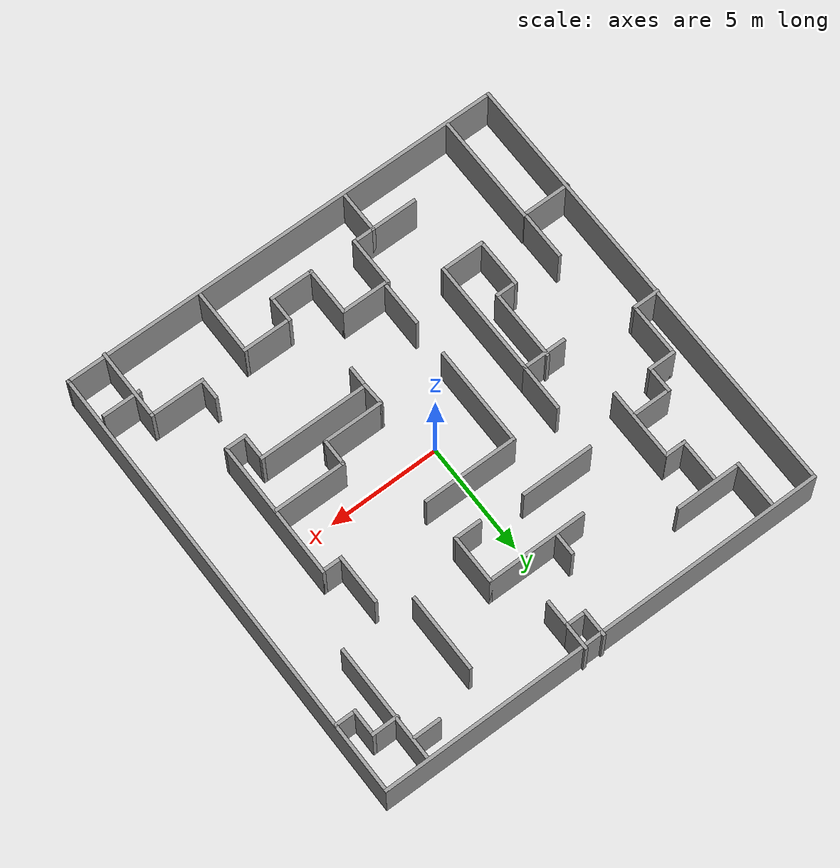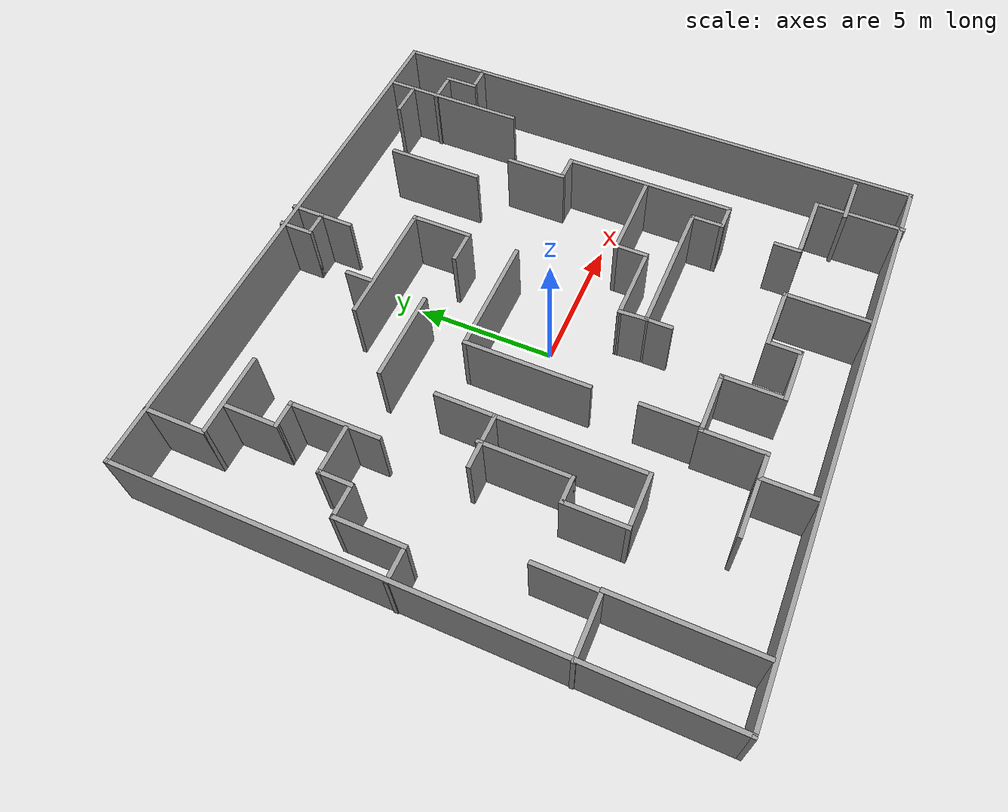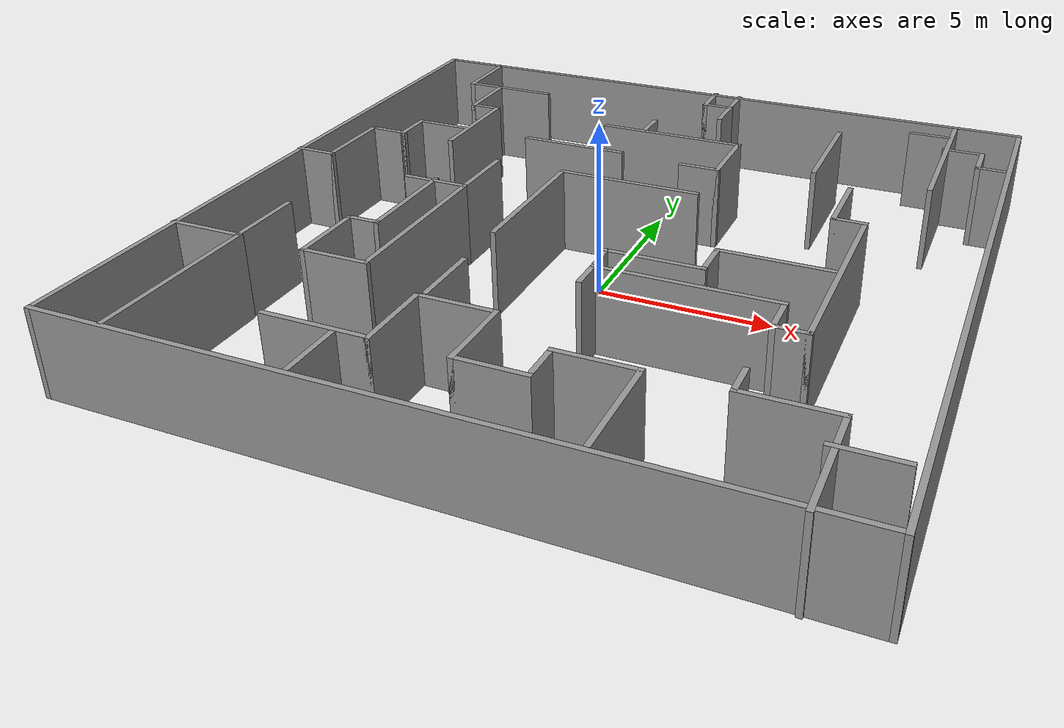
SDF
<?xml version="1.0" ?>
<sdf version="1.6">
  <world name="maze2_world">
    <include>
      <uri>file:///home/nitron/ALSAI/worlds/maze3/model.sdf</uri>
    </include>
  </world>
</sdf>

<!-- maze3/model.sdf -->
<sdf version='1.7'>
  <model name='maze3'>
    <pose>-0.097046 0.137521 0 0 -0 0</pose>
    <link name='Wall_0'>
      <collision name='Wall_0_Collision'>
        <geometry>
          <box>
            <size>20.25 0.15 2.5</size>
          </box>
        </geometry>
        <pose>0 0 1.25 0 -0 0</pose>
      </collision>
      <visual name='Wall_0_Visual'>
        <pose>0 0 1.25 0 -0 0</pose>
        <geometry>
          <box>
            <size>20.25 0.15 2.5</size>
          </box>
        </geometry>
        <material>
          <script>
            <uri>file://media/materials/scripts/gazebo.material</uri>
            <name>Gazebo/Grey</name>
          </script>
          <ambient>1 1 1 1</ambient>
        </material>
        <meta>
          <layer>0</layer>
        </meta>
      </visual>
      <pose>0.016675 10.0351 0 0 -0 0</pose>
    </link>
    <link name='Wall_1'>
      <collision name='Wall_1_Collision'>
        <geometry>
          <box>
            <size>20.25 0.15 2.5</size>
          </box>
        </geometry>
        <pose>0 0 1.25 0 -0 0</pose>
      </collision>
      <visual name='Wall_1_Visual'>
        <pose>0 0 1.25 0 -0 0</pose>
        <geometry>
          <box>
            <size>20.25 0.15 2.5</size>
          </box>
        </geometry>
        <material>
          <script>
            <uri>file://media/materials/scripts/gazebo.material</uri>
            <name>Gazebo/Grey</name>
          </script>
          <ambient>1 1 1 1</ambient>
        </material>
        <meta>
          <layer>0</layer>
        </meta>
      </visual>
      <pose>10.0667 -0.01495 0 0 -0 -1.5708</pose>
    </link>
    <link name='Wall_100'>
      <collision name='Wall_100_Collision'>
        <geometry>
          <box>
            <size>4.5 0.15 2.5</size>
          </box>
        </geometry>
        <pose>0 0 1.25 0 -0 0</pose>
      </collision>
      <visual name='Wall_100_Visual'>
        <pose>0 0 1.25 0 -0 0</pose>
        <geometry>
          <box>
            <size>4.5 0.15 2.5</size>
          </box>
        </geometry>
        <material>
          <script>
            <uri>file://media/materials/scripts/gazebo.material</uri>
            <name>Gazebo/Grey</name>
          </script>
          <ambient>1 1 1 1</ambient>
        </material>
        <meta>
          <layer>0</layer>
        </meta>
      </visual>
      <pose>-1.95923 -0.173249 0 0 -0 -1.5708</pose>
    </link>
    <link name='Wall_11'>
      <collision name='Wall_11_Collision'>
        <geometry>
          <box>
            <size>1 0.15 2.5</size>
          </box>
        </geometry>
        <pose>0 0 1.25 0 -0 0</pose>
      </collision>
      <visual name='Wall_11_Visual'>
        <pose>0 0 1.25 0 -0 0</pose>
        <geometry>
          <box>
            <size>1 0.15 2.5</size>
          </box>
        </geometry>
        <material>
          <script>
            <uri>file://media/materials/scripts/gazebo.material</uri>
            <name>Gazebo/Grey</name>
          </script>
          <ambient>1 1 1 1</ambient>
        </material>
        <meta>
          <layer>0</layer>
        </meta>
      </visual>
      <pose>-6.58427 5.99843 0 0 -0 0</pose>
    </link>
    <link name='Wall_14'>
      <collision name='Wall_14_Collision'>
        <geometry>
          <box>
            <size>3.25 0.15 2.5</size>
          </box>
        </geometry>
        <pose>0 0 1.25 0 -0 0</pose>
      </collision>
      <visual name='Wall_14_Visual'>
        <pose>0 0 1.25 0 -0 0</pose>
        <geometry>
          <box>
            <size>3.25 0.15 2.5</size>
          </box>
        </geometry>
        <material>
          <script>
            <uri>file://media/materials/scripts/gazebo.material</uri>
            <name>Gazebo/Grey</name>
          </script>
          <ambient>1 1 1 1</ambient>
        </material>
        <meta>
          <layer>0</layer>
        </meta>
      </visual>
      <pose>-6.15927 4.44843 0 0 -0 -1.5708</pose>
    </link>
    <link name='Wall_16'>
      <collision name='Wall_16_Collision'>
        <geometry>
          <box>
            <size>1.75 0.15 2.5</size>
          </box>
        </geometry>
        <pose>0 0 1.25 0 -0 0</pose>
      </collision>
      <visual name='Wall_16_Visual'>
        <pose>0 0 1.25 0 -0 0</pose>
        <geometry>
          <box>
            <size>1.75 0.15 2.5</size>
          </box>
        </geometry>
        <material>
          <script>
            <uri>file://media/materials/scripts/gazebo.material</uri>
            <name>Gazebo/Grey</name>
          </script>
          <ambient>1 1 1 1</ambient>
        </material>
        <meta>
          <layer>0</layer>
        </meta>
      </visual>
      <pose>-7.06489 3.98694 0 0 -0 3.14159</pose>
    </link>
    <link name='Wall_17'>
      <collision name='Wall_17_Collision'>
        <geometry>
          <box>
            <size>1.25 0.15 2.5</size>
          </box>
        </geometry>
        <pose>0 0 1.25 0 -0 0</pose>
      </collision>
      <visual name='Wall_17_Visual'>
        <pose>0 0 1.25 0 -0 0</pose>
        <geometry>
          <box>
            <size>1.25 0.15 2.5</size>
          </box>
        </geometry>
        <material>
          <script>
            <uri>file://media/materials/scripts/gazebo.material</uri>
            <name>Gazebo/Grey</name>
          </script>
          <ambient>1 1 1 1</ambient>
        </material>
        <meta>
          <layer>0</layer>
        </meta>
      </visual>
      <pose>-7.86489 3.43694 0 0 -0 -1.5708</pose>
    </link>
    <link name='Wall_18'>
      <collision name='Wall_18_Collision'>
        <geometry>
          <box>
            <size>1.25 0.15 2.5</size>
          </box>
        </geometry>
        <pose>0 0 1.25 0 -0 0</pose>
      </collision>
      <visual name='Wall_18_Visual'>
        <pose>0 0 1.25 0 -0 0</pose>
        <geometry>
          <box>
            <size>1.25 0.15 2.5</size>
          </box>
        </geometry>
        <material>
          <script>
            <uri>file://media/materials/scripts/gazebo.material</uri>
            <name>Gazebo/Grey</name>
          </script>
          <ambient>1 1 1 1</ambient>
        </material>
        <meta>
          <layer>0</layer>
        </meta>
      </visual>
      <pose>-8.41489 2.88694 0 0 -0 3.14159</pose>
    </link>
    <link name='Wall_19'>
      <collision name='Wall_19_Collision'>
        <geometry>
          <box>
            <size>2.5 0.15 2.5</size>
          </box>
        </geometry>
        <pose>0 0 1.25 0 -0 0</pose>
      </collision>
      <visual name='Wall_19_Visual'>
        <pose>0 0 1.25 0 -0 0</pose>
        <geometry>
          <box>
            <size>2.5 0.15 2.5</size>
          </box>
        </geometry>
        <material>
          <script>
            <uri>file://media/materials/scripts/gazebo.material</uri>
            <name>Gazebo/Grey</name>
          </script>
          <ambient>1 1 1 1</ambient>
        </material>
        <meta>
          <layer>0</layer>
        </meta>
      </visual>
      <pose>-8.96489 1.71194 0 0 -0 -1.5708</pose>
    </link>
    <link name='Wall_2'>
      <collision name='Wall_2_Collision'>
        <geometry>
          <box>
            <size>20.25 0.15 2.5</size>
          </box>
        </geometry>
        <pose>0 0 1.25 0 -0 0</pose>
      </collision>
      <visual name='Wall_2_Visual'>
        <pose>0 0 1.25 0 -0 0</pose>
        <geometry>
          <box>
            <size>20.25 0.15 2.5</size>
          </box>
        </geometry>
        <material>
          <script>
            <uri>file://media/materials/scripts/gazebo.material</uri>
            <name>Gazebo/Grey</name>
          </script>
          <ambient>1 1 1 1</ambient>
        </material>
        <meta>
          <layer>0</layer>
        </meta>
      </visual>
      <pose>0.016675 -10.0649 0 0 -0 3.14159</pose>
    </link>
    <link name='Wall_22'>
      <collision name='Wall_22_Collision'>
        <geometry>
          <box>
            <size>1.25 0.15 2.5</size>
          </box>
        </geometry>
        <pose>0 0 1.25 0 -0 0</pose>
      </collision>
      <visual name='Wall_22_Visual'>
        <pose>0 0 1.25 0 -0 0</pose>
        <geometry>
          <box>
            <size>1.25 0.15 2.5</size>
          </box>
        </geometry>
        <material>
          <script>
            <uri>file://media/materials/scripts/gazebo.material</uri>
            <name>Gazebo/Grey</name>
          </script>
          <ambient>1 1 1 1</ambient>
        </material>
        <meta>
          <layer>0</layer>
        </meta>
      </visual>
      <pose>-9.51489 0.536942 0 0 -0 3.14159</pose>
    </link>
    <link name='Wall_24'>
      <collision name='Wall_24_Collision'>
        <geometry>
          <box>
            <size>2.25 0.15 2.5</size>
          </box>
        </geometry>
        <pose>0 0 1.25 0 -0 0</pose>
      </collision>
      <visual name='Wall_24_Visual'>
        <pose>0 0 1.25 0 -0 0</pose>
        <geometry>
          <box>
            <size>2.25 0.15 2.5</size>
          </box>
        </geometry>
        <material>
          <script>
            <uri>file://media/materials/scripts/gazebo.material</uri>
            <name>Gazebo/Grey</name>
          </script>
          <ambient>1 1 1 1</ambient>
        </material>
        <meta>
          <layer>0</layer>
        </meta>
      </visual>
      <pose>-9.01668 -5.10153 0 0 -0 0</pose>
    </link>
    <link name='Wall_25'>
      <collision name='Wall_25_Collision'>
        <geometry>
          <box>
            <size>5 0.15 2.5</size>
          </box>
        </geometry>
        <pose>0 0 1.25 0 -0 0</pose>
      </collision>
      <visual name='Wall_25_Visual'>
        <pose>0 0 1.25 0 -0 0</pose>
        <geometry>
          <box>
            <size>5 0.15 2.5</size>
          </box>
        </geometry>
        <material>
          <script>
            <uri>file://media/materials/scripts/gazebo.material</uri>
            <name>Gazebo/Grey</name>
          </script>
          <ambient>1 1 1 1</ambient>
        </material>
        <meta>
          <layer>0</layer>
        </meta>
      </visual>
      <pose>-7.96668 -7.52653 0 0 -0 -1.5708</pose>
    </link>
    <link name='Wall_27'>
      <collision name='Wall_27_Collision'>
        <geometry>
          <box>
            <size>2.25 0.15 2.5</size>
          </box>
        </geometry>
        <pose>0 0 1.25 0 -0 0</pose>
      </collision>
      <visual name='Wall_27_Visual'>
        <pose>0 0 1.25 0 -0 0</pose>
        <geometry>
          <box>
            <size>2.25 0.15 2.5</size>
          </box>
        </geometry>
        <material>
          <script>
            <uri>file://media/materials/scripts/gazebo.material</uri>
            <name>Gazebo/Grey</name>
          </script>
          <ambient>1 1 1 1</ambient>
        </material>
        <meta>
          <layer>0</layer>
        </meta>
      </visual>
      <pose>-8.00344 -4.00738 0 0 -0 -1.5708</pose>
    </link>
    <link name='Wall_29'>
      <collision name='Wall_29_Collision'>
        <geometry>
          <box>
            <size>2 0.15 2.5</size>
          </box>
        </geometry>
        <pose>0 0 1.25 0 -0 0</pose>
      </collision>
      <visual name='Wall_29_Visual'>
        <pose>0 0 1.25 0 -0 0</pose>
        <geometry>
          <box>
            <size>2 0.15 2.5</size>
          </box>
        </geometry>
        <material>
          <script>
            <uri>file://media/materials/scripts/gazebo.material</uri>
            <name>Gazebo/Grey</name>
          </script>
          <ambient>1 1 1 1</ambient>
        </material>
        <meta>
          <layer>0</layer>
        </meta>
      </visual>
      <pose>-5.01521 -0.04458 0 0 -0 0</pose>
    </link>
    <link name='Wall_3'>
      <collision name='Wall_3_Collision'>
        <geometry>
          <box>
            <size>20.25 0.15 2.5</size>
          </box>
        </geometry>
        <pose>0 0 1.25 0 -0 0</pose>
      </collision>
      <visual name='Wall_3_Visual'>
        <pose>0 0 1.25 0 -0 0</pose>
        <geometry>
          <box>
            <size>20.25 0.15 2.5</size>
          </box>
        </geometry>
        <material>
          <script>
            <uri>file://media/materials/scripts/gazebo.material</uri>
            <name>Gazebo/Grey</name>
          </script>
          <ambient>1 1 1 1</ambient>
        </material>
        <meta>
          <layer>0</layer>
        </meta>
      </visual>
      <pose>-10.0333 -0.01495 0 0 -0 1.5708</pose>
    </link>
    <link name='Wall_30'>
      <collision name='Wall_30_Collision'>
        <geometry>
          <box>
            <size>5.25 0.15 2.5</size>
          </box>
        </geometry>
        <pose>0 0 1.25 0 -0 0</pose>
      </collision>
      <visual name='Wall_30_Visual'>
        <pose>0 0 1.25 0 -0 0</pose>
        <geometry>
          <box>
            <size>5.25 0.15 2.5</size>
          </box>
        </geometry>
        <material>
          <script>
            <uri>file://media/materials/scripts/gazebo.material</uri>
            <name>Gazebo/Grey</name>
          </script>
          <ambient>1 1 1 1</ambient>
        </material>
        <meta>
          <layer>0</layer>
        </meta>
      </visual>
      <pose>-4.09021 -2.59458 0 0 -0 -1.5708</pose>
    </link>
    <link name='Wall_31'>
      <collision name='Wall_31_Collision'>
        <geometry>
          <box>
            <size>2 0.15 2.5</size>
          </box>
        </geometry>
        <pose>0 0 1.25 0 -0 0</pose>
      </collision>
      <visual name='Wall_31_Visual'>
        <pose>0 0 1.25 0 -0 0</pose>
        <geometry>
          <box>
            <size>2 0.15 2.5</size>
          </box>
        </geometry>
        <material>
          <script>
            <uri>file://media/materials/scripts/gazebo.material</uri>
            <name>Gazebo/Grey</name>
          </script>
          <ambient>1 1 1 1</ambient>
        </material>
        <meta>
          <layer>0</layer>
        </meta>
      </visual>
      <pose>-5.01521 -5.14458 0 0 -0 3.14159</pose>
    </link>
    <link name='Wall_32'>
      <collision name='Wall_32_Collision'>
        <geometry>
          <box>
            <size>2.25 0.15 2.5</size>
          </box>
        </geometry>
        <pose>0 0 1.25 0 -0 0</pose>
      </collision>
      <visual name='Wall_32_Visual'>
        <pose>0 0 1.25 0 -0 0</pose>
        <geometry>
          <box>
            <size>2.25 0.15 2.5</size>
          </box>
        </geometry>
        <material>
          <script>
            <uri>file://media/materials/scripts/gazebo.material</uri>
            <name>Gazebo/Grey</name>
          </script>
          <ambient>1 1 1 1</ambient>
        </material>
        <meta>
          <layer>0</layer>
        </meta>
      </visual>
      <pose>-5.94021 -4.09458 0 0 -0 1.5708</pose>
    </link>
    <link name='Wall_33'>
      <collision name='Wall_33_Collision'>
        <geometry>
          <box>
            <size>1 0.15 2.5</size>
          </box>
        </geometry>
        <pose>0 0 1.25 0 -0 0</pose>
      </collision>
      <visual name='Wall_33_Visual'>
        <pose>0 0 1.25 0 -0 0</pose>
        <geometry>
          <box>
            <size>1 0.15 2.5</size>
          </box>
        </geometry>
        <material>
          <script>
            <uri>file://media/materials/scripts/gazebo.material</uri>
            <name>Gazebo/Grey</name>
          </script>
          <ambient>1 1 1 1</ambient>
        </material>
        <meta>
          <layer>0</layer>
        </meta>
      </visual>
      <pose>-5.51521 -3.04458 0 0 -0 0</pose>
    </link>
    <link name='Wall_34'>
      <collision name='Wall_34_Collision'>
        <geometry>
          <box>
            <size>3.25 0.15 2.5</size>
          </box>
        </geometry>
        <pose>0 0 1.25 0 -0 0</pose>
      </collision>
      <visual name='Wall_34_Visual'>
        <pose>0 0 1.25 0 -0 0</pose>
        <geometry>
          <box>
            <size>3.25 0.15 2.5</size>
          </box>
        </geometry>
        <material>
          <script>
            <uri>file://media/materials/scripts/gazebo.material</uri>
            <name>Gazebo/Grey</name>
          </script>
          <ambient>1 1 1 1</ambient>
        </material>
        <meta>
          <layer>0</layer>
        </meta>
      </visual>
      <pose>-5.09021 -1.49458 0 0 -0 1.5708</pose>
    </link>
    <link name='Wall_36'>
      <collision name='Wall_36_Collision'>
        <geometry>
          <box>
            <size>2.17281 0.15 2.5</size>
          </box>
        </geometry>
        <pose>0 0 1.25 0 -0 0</pose>
      </collision>
      <visual name='Wall_36_Visual'>
        <pose>0 0 1.25 0 -0 0</pose>
        <geometry>
          <box>
            <size>2.17281 0.15 2.5</size>
          </box>
        </geometry>
        <material>
          <script>
            <uri>file://media/materials/scripts/gazebo.material</uri>
            <name>Gazebo/Grey</name>
          </script>
          <ambient>1 1 1 1</ambient>
        </material>
        <meta>
          <layer>0</layer>
        </meta>
      </visual>
      <pose>-4.08473 0.966809 0 0 -0 -1.57621</pose>
    </link>
    <link name='Wall_38'>
      <collision name='Wall_38_Collision'>
        <geometry>
          <box>
            <size>3.25 0.15 2.5</size>
          </box>
        </geometry>
        <pose>0 0 1.25 0 -0 0</pose>
      </collision>
      <visual name='Wall_38_Visual'>
        <pose>0 0 1.25 0 -0 0</pose>
        <geometry>
          <box>
            <size>3.25 0.15 2.5</size>
          </box>
        </geometry>
        <material>
          <script>
            <uri>file://media/materials/scripts/gazebo.material</uri>
            <name>Gazebo/Grey</name>
          </script>
          <ambient>1 1 1 1</ambient>
        </material>
        <meta>
          <layer>0</layer>
        </meta>
      </visual>
      <pose>-2.4888 4.00098 0 0 -0 0</pose>
    </link>
    <link name='Wall_40'>
      <collision name='Wall_40_Collision'>
        <geometry>
          <box>
            <size>4.5 0.15 2.5</size>
          </box>
        </geometry>
        <pose>0 0 1.25 0 -0 0</pose>
      </collision>
      <visual name='Wall_40_Visual'>
        <pose>0 0 1.25 0 -0 0</pose>
        <geometry>
          <box>
            <size>4.5 0.15 2.5</size>
          </box>
        </geometry>
        <material>
          <script>
            <uri>file://media/materials/scripts/gazebo.material</uri>
            <name>Gazebo/Grey</name>
          </script>
          <ambient>1 1 1 1</ambient>
        </material>
        <meta>
          <layer>0</layer>
        </meta>
      </visual>
      <pose>-0.002838 5.94285 0 0 -0 0</pose>
    </link>
    <link name='Wall_41'>
      <collision name='Wall_41_Collision'>
        <geometry>
          <box>
            <size>2.25 0.15 2.5</size>
          </box>
        </geometry>
        <pose>0 0 1.25 0 -0 0</pose>
      </collision>
      <visual name='Wall_41_Visual'>
        <pose>0 0 1.25 0 -0 0</pose>
        <geometry>
          <box>
            <size>2.25 0.15 2.5</size>
          </box>
        </geometry>
        <material>
          <script>
            <uri>file://media/materials/scripts/gazebo.material</uri>
            <name>Gazebo/Grey</name>
          </script>
          <ambient>1 1 1 1</ambient>
        </material>
        <meta>
          <layer>0</layer>
        </meta>
      </visual>
      <pose>2.17216 4.89285 0 0 -0 -1.5708</pose>
    </link>
    <link name='Wall_42'>
      <collision name='Wall_42_Collision'>
        <geometry>
          <box>
            <size>1.25 0.15 2.5</size>
          </box>
        </geometry>
        <pose>0 0 1.25 0 -0 0</pose>
      </collision>
      <visual name='Wall_42_Visual'>
        <pose>0 0 1.25 0 -0 0</pose>
        <geometry>
          <box>
            <size>1.25 0.15 2.5</size>
          </box>
        </geometry>
        <material>
          <script>
            <uri>file://media/materials/scripts/gazebo.material</uri>
            <name>Gazebo/Grey</name>
          </script>
          <ambient>1 1 1 1</ambient>
        </material>
        <meta>
          <layer>0</layer>
        </meta>
      </visual>
      <pose>1.62216 3.84285 0 0 -0 3.14159</pose>
    </link>
    <link name='Wall_46'>
      <collision name='Wall_46_Collision'>
        <geometry>
          <box>
            <size>1 0.15 2.5</size>
          </box>
        </geometry>
        <pose>0 0 1.25 0 -0 0</pose>
      </collision>
      <visual name='Wall_46_Visual'>
        <pose>0 0 1.25 0 -0 0</pose>
        <geometry>
          <box>
            <size>1 0.15 2.5</size>
          </box>
        </geometry>
        <material>
          <script>
            <uri>file://media/materials/scripts/gazebo.material</uri>
            <name>Gazebo/Grey</name>
          </script>
          <ambient>1 1 1 1</ambient>
        </material>
        <meta>
          <layer>0</layer>
        </meta>
      </visual>
      <pose>-0.923715 6.48878 0 0 -0 -1.5708</pose>
    </link>
    <link name='Wall_48'>
      <collision name='Wall_48_Collision'>
        <geometry>
          <box>
            <size>1.25 0.15 2.5</size>
          </box>
        </geometry>
        <pose>0 0 1.25 0 -0 0</pose>
      </collision>
      <visual name='Wall_48_Visual'>
        <pose>0 0 1.25 0 -0 0</pose>
        <geometry>
          <box>
            <size>1.25 0.15 2.5</size>
          </box>
        </geometry>
        <material>
          <script>
            <uri>file://media/materials/scripts/gazebo.material</uri>
            <name>Gazebo/Grey</name>
          </script>
          <ambient>1 1 1 1</ambient>
        </material>
        <meta>
          <layer>0</layer>
        </meta>
      </visual>
      <pose>0.107671 9.58413 0 0 -0 -1.5708</pose>
    </link>
    <link name='Wall_49'>
      <collision name='Wall_49_Collision'>
        <geometry>
          <box>
            <size>1 0.15 2.5</size>
          </box>
        </geometry>
        <pose>0 0 1.25 0 -0 0</pose>
      </collision>
      <visual name='Wall_49_Visual'>
        <pose>0 0 1.25 0 -0 0</pose>
        <geometry>
          <box>
            <size>1 0.15 2.5</size>
          </box>
        </geometry>
        <material>
          <script>
            <uri>file://media/materials/scripts/gazebo.material</uri>
            <name>Gazebo/Grey</name>
          </script>
          <ambient>1 1 1 1</ambient>
        </material>
        <meta>
          <layer>0</layer>
        </meta>
      </visual>
      <pose>0.532671 9.03413 0 0 -0 0</pose>
    </link>
    <link name='Wall_5'>
      <collision name='Wall_5_Collision'>
        <geometry>
          <box>
            <size>2.25 0.15 2.5</size>
          </box>
        </geometry>
        <pose>0 0 1.25 0 -0 0</pose>
      </collision>
      <visual name='Wall_5_Visual'>
        <pose>0 0 1.25 0 -0 0</pose>
        <geometry>
          <box>
            <size>2.25 0.15 2.5</size>
          </box>
        </geometry>
        <material>
          <script>
            <uri>file://media/materials/scripts/gazebo.material</uri>
            <name>Gazebo/Grey</name>
          </script>
          <ambient>1 1 1 1</ambient>
        </material>
        <meta>
          <layer>0</layer>
        </meta>
      </visual>
      <pose>-8.07932 8.98505 0 0 -0 -1.5708</pose>
    </link>
    <link name='Wall_50'>
      <collision name='Wall_50_Collision'>
        <geometry>
          <box>
            <size>1.25 0.15 2.5</size>
          </box>
        </geometry>
        <pose>0 0 1.25 0 -0 0</pose>
      </collision>
      <visual name='Wall_50_Visual'>
        <pose>0 0 1.25 0 -0 0</pose>
        <geometry>
          <box>
            <size>1.25 0.15 2.5</size>
          </box>
        </geometry>
        <material>
          <script>
            <uri>file://media/materials/scripts/gazebo.material</uri>
            <name>Gazebo/Grey</name>
          </script>
          <ambient>1 1 1 1</ambient>
        </material>
        <meta>
          <layer>0</layer>
        </meta>
      </visual>
      <pose>0.957671 9.58413 0 0 -0 1.5708</pose>
    </link>
    <link name='Wall_52'>
      <collision name='Wall_52_Collision'>
        <geometry>
          <box>
            <size>1.25 0.15 2.5</size>
          </box>
        </geometry>
        <pose>0 0 1.25 0 -0 0</pose>
      </collision>
      <visual name='Wall_52_Visual'>
        <pose>0 0 1.25 0 -0 0</pose>
        <geometry>
          <box>
            <size>1.25 0.15 2.5</size>
          </box>
        </geometry>
        <material>
          <script>
            <uri>file://media/materials/scripts/gazebo.material</uri>
            <name>Gazebo/Grey</name>
          </script>
          <ambient>1 1 1 1</ambient>
        </material>
        <meta>
          <layer>0</layer>
        </meta>
      </visual>
      <pose>0.957671 8.48413 0 0 -0 -1.5708</pose>
    </link>
    <link name='Wall_54'>
      <collision name='Wall_54_Collision'>
        <geometry>
          <box>
            <size>3.5 0.15 2.5</size>
          </box>
        </geometry>
        <pose>0 0 1.25 0 -0 0</pose>
      </collision>
      <visual name='Wall_54_Visual'>
        <pose>0 0 1.25 0 -0 0</pose>
        <geometry>
          <box>
            <size>3.5 0.15 2.5</size>
          </box>
        </geometry>
        <material>
          <script>
            <uri>file://media/materials/scripts/gazebo.material</uri>
            <name>Gazebo/Grey</name>
          </script>
          <ambient>1 1 1 1</ambient>
        </material>
        <meta>
          <layer>0</layer>
        </meta>
      </visual>
      <pose>4.81589 6.47954 0 0 -0 -1.5708</pose>
    </link>
    <link name='Wall_56'>
      <collision name='Wall_56_Collision'>
        <geometry>
          <box>
            <size>5.25 0.15 2.5</size>
          </box>
        </geometry>
        <pose>0 0 1.25 0 -0 0</pose>
      </collision>
      <visual name='Wall_56_Visual'>
        <pose>0 0 1.25 0 -0 0</pose>
        <geometry>
          <box>
            <size>5.25 0.15 2.5</size>
          </box>
        </geometry>
        <material>
          <script>
            <uri>file://media/materials/scripts/gazebo.material</uri>
            <name>Gazebo/Grey</name>
          </script>
          <ambient>1 1 1 1</ambient>
        </material>
        <meta>
          <layer>0</layer>
        </meta>
      </visual>
      <pose>8.13305 7.37012 0 0 -0 -1.5708</pose>
    </link>
    <link name='Wall_58'>
      <collision name='Wall_58_Collision'>
        <geometry>
          <box>
            <size>1.25 0.15 2.5</size>
          </box>
        </geometry>
        <pose>0 0 1.25 0 -0 0</pose>
      </collision>
      <visual name='Wall_58_Visual'>
        <pose>0 0 1.25 0 -0 0</pose>
        <geometry>
          <box>
            <size>1.25 0.15 2.5</size>
          </box>
        </geometry>
        <material>
          <script>
            <uri>file://media/materials/scripts/gazebo.material</uri>
            <name>Gazebo/Grey</name>
          </script>
          <ambient>1 1 1 1</ambient>
        </material>
        <meta>
          <layer>0</layer>
        </meta>
      </visual>
      <pose>8.62954 8.04753 0 0 -0 0</pose>
    </link>
    <link name='Wall_59'>
      <collision name='Wall_59_Collision'>
        <geometry>
          <box>
            <size>1.25 0.15 2.5</size>
          </box>
        </geometry>
        <pose>0 0 1.25 0 -0 0</pose>
      </collision>
      <visual name='Wall_59_Visual'>
        <pose>0 0 1.25 0 -0 0</pose>
        <geometry>
          <box>
            <size>1.25 0.15 2.5</size>
          </box>
        </geometry>
        <material>
          <script>
            <uri>file://media/materials/scripts/gazebo.material</uri>
            <name>Gazebo/Grey</name>
          </script>
          <ambient>1 1 1 1</ambient>
        </material>
        <meta>
          <layer>0</layer>
        </meta>
      </visual>
      <pose>9.17954 7.49753 0 0 -0 -1.5708</pose>
    </link>
    <link name='Wall_6'>
      <collision name='Wall_6_Collision'>
        <geometry>
          <box>
            <size>3 0.15 2.5</size>
          </box>
        </geometry>
        <pose>0 0 1.25 0 -0 0</pose>
      </collision>
      <visual name='Wall_6_Visual'>
        <pose>0 0 1.25 0 -0 0</pose>
        <geometry>
          <box>
            <size>3 0.15 2.5</size>
          </box>
        </geometry>
        <material>
          <script>
            <uri>file://media/materials/scripts/gazebo.material</uri>
            <name>Gazebo/Grey</name>
          </script>
          <ambient>1 1 1 1</ambient>
        </material>
        <meta>
          <layer>0</layer>
        </meta>
      </visual>
      <pose>-6.65432 7.93505 0 0 -0 0</pose>
    </link>
    <link name='Wall_60'>
      <collision name='Wall_60_Collision'>
        <geometry>
          <box>
            <size>1 0.15 2.5</size>
          </box>
        </geometry>
        <pose>0 0 1.25 0 -0 0</pose>
      </collision>
      <visual name='Wall_60_Visual'>
        <pose>0 0 1.25 0 -0 0</pose>
        <geometry>
          <box>
            <size>1 0.15 2.5</size>
          </box>
        </geometry>
        <material>
          <script>
            <uri>file://media/materials/scripts/gazebo.material</uri>
            <name>Gazebo/Grey</name>
          </script>
          <ambient>1 1 1 1</ambient>
        </material>
        <meta>
          <layer>0</layer>
        </meta>
      </visual>
      <pose>9.60454 6.94753 0 0 -0 0</pose>
    </link>
    <link name='Wall_62'>
      <collision name='Wall_62_Collision'>
        <geometry>
          <box>
            <size>1.25 0.15 2.5</size>
          </box>
        </geometry>
        <pose>0 0 1.25 0 -0 0</pose>
      </collision>
      <visual name='Wall_62_Visual'>
        <pose>0 0 1.25 0 -0 0</pose>
        <geometry>
          <box>
            <size>1.25 0.15 2.5</size>
          </box>
        </geometry>
        <material>
          <script>
            <uri>file://media/materials/scripts/gazebo.material</uri>
            <name>Gazebo/Grey</name>
          </script>
          <ambient>1 1 1 1</ambient>
        </material>
        <meta>
          <layer>0</layer>
        </meta>
      </visual>
      <pose>7.47604 9.06408 0 0 -0 3.14159</pose>
    </link>
    <link name='Wall_64'>
      <collision name='Wall_64_Collision'>
        <geometry>
          <box>
            <size>2.25 0.15 2.5</size>
          </box>
        </geometry>
        <pose>0 0 1.25 0 -0 0</pose>
      </collision>
      <visual name='Wall_64_Visual'>
        <pose>0 0 1.25 0 -0 0</pose>
        <geometry>
          <box>
            <size>2.25 0.15 2.5</size>
          </box>
        </geometry>
        <material>
          <script>
            <uri>file://media/materials/scripts/gazebo.material</uri>
            <name>Gazebo/Grey</name>
          </script>
          <ambient>1 1 1 1</ambient>
        </material>
        <meta>
          <layer>0</layer>
        </meta>
      </visual>
      <pose>6.04645 2.93134 0 0 -0 -1.5708</pose>
    </link>
    <link name='Wall_65'>
      <collision name='Wall_65_Collision'>
        <geometry>
          <box>
            <size>1 0.15 2.5</size>
          </box>
        </geometry>
        <pose>0 0 1.25 0 -0 0</pose>
      </collision>
      <visual name='Wall_65_Visual'>
        <pose>0 0 1.25 0 -0 0</pose>
        <geometry>
          <box>
            <size>1 0.15 2.5</size>
          </box>
        </geometry>
        <material>
          <script>
            <uri>file://media/materials/scripts/gazebo.material</uri>
            <name>Gazebo/Grey</name>
          </script>
          <ambient>1 1 1 1</ambient>
        </material>
        <meta>
          <layer>0</layer>
        </meta>
      </visual>
      <pose>6.47145 1.88134 0 0 -0 0</pose>
    </link>
    <link name='Wall_66'>
      <collision name='Wall_66_Collision'>
        <geometry>
          <box>
            <size>6.25 0.15 2.5</size>
          </box>
        </geometry>
        <pose>0 0 1.25 0 -0 0</pose>
      </collision>
      <visual name='Wall_66_Visual'>
        <pose>0 0 1.25 0 -0 0</pose>
        <geometry>
          <box>
            <size>6.25 0.15 2.5</size>
          </box>
        </geometry>
        <material>
          <script>
            <uri>file://media/materials/scripts/gazebo.material</uri>
            <name>Gazebo/Grey</name>
          </script>
          <ambient>1 1 1 1</ambient>
        </material>
        <meta>
          <layer>0</layer>
        </meta>
      </visual>
      <pose>6.89645 -1.16866 0 0 -0 -1.5708</pose>
    </link>
    <link name='Wall_67'>
      <collision name='Wall_67_Collision'>
        <geometry>
          <box>
            <size>1 0.15 2.5</size>
          </box>
        </geometry>
        <pose>0 0 1.25 0 -0 0</pose>
      </collision>
      <visual name='Wall_67_Visual'>
        <pose>0 0 1.25 0 -0 0</pose>
        <geometry>
          <box>
            <size>1 0.15 2.5</size>
          </box>
        </geometry>
        <material>
          <script>
            <uri>file://media/materials/scripts/gazebo.material</uri>
            <name>Gazebo/Grey</name>
          </script>
          <ambient>1 1 1 1</ambient>
        </material>
        <meta>
          <layer>0</layer>
        </meta>
      </visual>
      <pose>6.47145 -4.21866 0 0 -0 3.14159</pose>
    </link>
    <link name='Wall_68'>
      <collision name='Wall_68_Collision'>
        <geometry>
          <box>
            <size>1.25 0.15 2.5</size>
          </box>
        </geometry>
        <pose>0 0 1.25 0 -0 0</pose>
      </collision>
      <visual name='Wall_68_Visual'>
        <pose>0 0 1.25 0 -0 0</pose>
        <geometry>
          <box>
            <size>1.25 0.15 2.5</size>
          </box>
        </geometry>
        <material>
          <script>
            <uri>file://media/materials/scripts/gazebo.material</uri>
            <name>Gazebo/Grey</name>
          </script>
          <ambient>1 1 1 1</ambient>
        </material>
        <meta>
          <layer>0</layer>
        </meta>
      </visual>
      <pose>6.04645 -3.66866 0 0 -0 1.5708</pose>
    </link>
    <link name='Wall_69'>
      <collision name='Wall_69_Collision'>
        <geometry>
          <box>
            <size>5 0.15 2.5</size>
          </box>
        </geometry>
        <pose>0 0 1.25 0 -0 0</pose>
      </collision>
      <visual name='Wall_69_Visual'>
        <pose>0 0 1.25 0 -0 0</pose>
        <geometry>
          <box>
            <size>5 0.15 2.5</size>
          </box>
        </geometry>
        <material>
          <script>
            <uri>file://media/materials/scripts/gazebo.material</uri>
            <name>Gazebo/Grey</name>
          </script>
          <ambient>1 1 1 1</ambient>
        </material>
        <meta>
          <layer>0</layer>
        </meta>
      </visual>
      <pose>3.62145 -3.11866 0 0 -0 3.14159</pose>
    </link>
    <link name='Wall_70'>
      <collision name='Wall_70_Collision'>
        <geometry>
          <box>
            <size>1 0.15 2.5</size>
          </box>
        </geometry>
        <pose>0 0 1.25 0 -0 0</pose>
      </collision>
      <visual name='Wall_70_Visual'>
        <pose>0 0 1.25 0 -0 0</pose>
        <geometry>
          <box>
            <size>1 0.15 2.5</size>
          </box>
        </geometry>
        <material>
          <script>
            <uri>file://media/materials/scripts/gazebo.material</uri>
            <name>Gazebo/Grey</name>
          </script>
          <ambient>1 1 1 1</ambient>
        </material>
        <meta>
          <layer>0</layer>
        </meta>
      </visual>
      <pose>1.19645 -3.54366 0 0 -0 -1.5708</pose>
    </link>
    <link name='Wall_72'>
      <collision name='Wall_72_Collision'>
        <geometry>
          <box>
            <size>3.25 0.15 2.5</size>
          </box>
        </geometry>
        <pose>0 0 1.25 0 -0 0</pose>
      </collision>
      <visual name='Wall_72_Visual'>
        <pose>0 0 1.25 0 -0 0</pose>
        <geometry>
          <box>
            <size>3.25 0.15 2.5</size>
          </box>
        </geometry>
        <material>
          <script>
            <uri>file://media/materials/scripts/gazebo.material</uri>
            <name>Gazebo/Grey</name>
          </script>
          <ambient>1 1 1 1</ambient>
        </material>
        <meta>
          <layer>0</layer>
        </meta>
      </visual>
      <pose>5.29899 -1.10139 0 0 -0 3.14159</pose>
    </link>
    <link name='Wall_73'>
      <collision name='Wall_73_Collision'>
        <geometry>
          <box>
            <size>1.25 0.15 2.5</size>
          </box>
        </geometry>
        <pose>0 0 1.25 0 -0 0</pose>
      </collision>
      <visual name='Wall_73_Visual'>
        <pose>0 0 1.25 0 -0 0</pose>
        <geometry>
          <box>
            <size>1.25 0.15 2.5</size>
          </box>
        </geometry>
        <material>
          <script>
            <uri>file://media/materials/scripts/gazebo.material</uri>
            <name>Gazebo/Grey</name>
          </script>
          <ambient>1 1 1 1</ambient>
        </material>
        <meta>
          <layer>0</layer>
        </meta>
      </visual>
      <pose>3.74899 -1.65139 0 0 -0 -1.5708</pose>
    </link>
    <link name='Wall_74'>
      <collision name='Wall_74_Collision'>
        <geometry>
          <box>
            <size>2.75 0.15 2.5</size>
          </box>
        </geometry>
        <pose>0 0 1.25 0 -0 0</pose>
      </collision>
      <visual name='Wall_74_Visual'>
        <pose>0 0 1.25 0 -0 0</pose>
        <geometry>
          <box>
            <size>2.75 0.15 2.5</size>
          </box>
        </geometry>
        <material>
          <script>
            <uri>file://media/materials/scripts/gazebo.material</uri>
            <name>Gazebo/Grey</name>
          </script>
          <ambient>1 1 1 1</ambient>
        </material>
        <meta>
          <layer>0</layer>
        </meta>
      </visual>
      <pose>2.44899 -2.20139 0 0 -0 3.14159</pose>
    </link>
    <link name='Wall_75'>
      <collision name='Wall_75_Collision'>
        <geometry>
          <box>
            <size>1.06849 0.15 2.5</size>
          </box>
        </geometry>
        <pose>0 0 1.25 0 -0 0</pose>
      </collision>
      <visual name='Wall_75_Visual'>
        <pose>0 0 1.25 0 -0 0</pose>
        <geometry>
          <box>
            <size>1.06849 0.15 2.5</size>
          </box>
        </geometry>
        <material>
          <script>
            <uri>file://media/materials/scripts/gazebo.material</uri>
            <name>Gazebo/Grey</name>
          </script>
          <ambient>1 1 1 1</ambient>
        </material>
        <meta>
          <layer>0</layer>
        </meta>
      </visual>
      <pose>1.17272 -2.66003 0 0 -0 -1.5191</pose>
    </link>
    <link name='Wall_77'>
      <collision name='Wall_77_Collision'>
        <geometry>
          <box>
            <size>3 0.15 2.5</size>
          </box>
        </geometry>
        <pose>0 0 1.25 0 -0 0</pose>
      </collision>
      <visual name='Wall_77_Visual'>
        <pose>0 0 1.25 0 -0 0</pose>
        <geometry>
          <box>
            <size>3 0.15 2.5</size>
          </box>
        </geometry>
        <material>
          <script>
            <uri>file://media/materials/scripts/gazebo.material</uri>
            <name>Gazebo/Grey</name>
          </script>
          <ambient>1 1 1 1</ambient>
        </material>
        <meta>
          <layer>0</layer>
        </meta>
      </visual>
      <pose>-3.49656 -8.16372 0 0 -0 0</pose>
    </link>
    <link name='Wall_78'>
      <collision name='Wall_78_Collision'>
        <geometry>
          <box>
            <size>2.25 0.15 2.5</size>
          </box>
        </geometry>
        <pose>0 0 1.25 0 -0 0</pose>
      </collision>
      <visual name='Wall_78_Visual'>
        <pose>0 0 1.25 0 -0 0</pose>
        <geometry>
          <box>
            <size>2.25 0.15 2.5</size>
          </box>
        </geometry>
        <material>
          <script>
            <uri>file://media/materials/scripts/gazebo.material</uri>
            <name>Gazebo/Grey</name>
          </script>
          <ambient>1 1 1 1</ambient>
        </material>
        <meta>
          <layer>0</layer>
        </meta>
      </visual>
      <pose>-2.07156 -7.11372 0 0 -0 1.5708</pose>
    </link>
    <link name='Wall_79'>
      <collision name='Wall_79_Collision'>
        <geometry>
          <box>
            <size>2.25 0.15 2.5</size>
          </box>
        </geometry>
        <pose>0 0 1.25 0 -0 0</pose>
      </collision>
      <visual name='Wall_79_Visual'>
        <pose>0 0 1.25 0 -0 0</pose>
        <geometry>
          <box>
            <size>2.25 0.15 2.5</size>
          </box>
        </geometry>
        <material>
          <script>
            <uri>file://media/materials/scripts/gazebo.material</uri>
            <name>Gazebo/Grey</name>
          </script>
          <ambient>1 1 1 1</ambient>
        </material>
        <meta>
          <layer>0</layer>
        </meta>
      </visual>
      <pose>-1.02156 -6.06372 0 0 -0 0</pose>
    </link>
    <link name='Wall_8'>
      <collision name='Wall_8_Collision'>
        <geometry>
          <box>
            <size>2 0.15 2.5</size>
          </box>
        </geometry>
        <pose>0 0 1.25 0 -0 0</pose>
      </collision>
      <visual name='Wall_8_Visual'>
        <pose>0 0 1.25 0 -0 0</pose>
        <geometry>
          <box>
            <size>2 0.15 2.5</size>
          </box>
        </geometry>
        <material>
          <script>
            <uri>file://media/materials/scripts/gazebo.material</uri>
            <name>Gazebo/Grey</name>
          </script>
          <ambient>1 1 1 1</ambient>
        </material>
        <meta>
          <layer>0</layer>
        </meta>
      </visual>
      <pose>-7.00927 6.92343 0 0 -0 -1.5708</pose>
    </link>
    <link name='Wall_80'>
      <collision name='Wall_80_Collision'>
        <geometry>
          <box>
            <size>2.25 0.15 2.5</size>
          </box>
        </geometry>
        <pose>0 0 1.25 0 -0 0</pose>
      </collision>
      <visual name='Wall_80_Visual'>
        <pose>0 0 1.25 0 -0 0</pose>
        <geometry>
          <box>
            <size>2.25 0.15 2.5</size>
          </box>
        </geometry>
        <material>
          <script>
            <uri>file://media/materials/scripts/gazebo.material</uri>
            <name>Gazebo/Grey</name>
          </script>
          <ambient>1 1 1 1</ambient>
        </material>
        <meta>
          <layer>0</layer>
        </meta>
      </visual>
      <pose>0.028436 -7.11372 0 0 -0 -1.5708</pose>
    </link>
    <link name='Wall_81'>
      <collision name='Wall_81_Collision'>
        <geometry>
          <box>
            <size>2 0.15 2.5</size>
          </box>
        </geometry>
        <pose>0 0 1.25 0 -0 0</pose>
      </collision>
      <visual name='Wall_81_Visual'>
        <pose>0 0 1.25 0 -0 0</pose>
        <geometry>
          <box>
            <size>2 0.15 2.5</size>
          </box>
        </geometry>
        <material>
          <script>
            <uri>file://media/materials/scripts/gazebo.material</uri>
            <name>Gazebo/Grey</name>
          </script>
          <ambient>1 1 1 1</ambient>
        </material>
        <meta>
          <layer>0</layer>
        </meta>
      </visual>
      <pose>0.953436 -8.16372 0 0 -0 0</pose>
    </link>
    <link name='Wall_82'>
      <collision name='Wall_82_Collision'>
        <geometry>
          <box>
            <size>1.25 0.15 2.5</size>
          </box>
        </geometry>
        <pose>0 0 1.25 0 -0 0</pose>
      </collision>
      <visual name='Wall_82_Visual'>
        <pose>0 0 1.25 0 -0 0</pose>
        <geometry>
          <box>
            <size>1.25 0.15 2.5</size>
          </box>
        </geometry>
        <material>
          <script>
            <uri>file://media/materials/scripts/gazebo.material</uri>
            <name>Gazebo/Grey</name>
          </script>
          <ambient>1 1 1 1</ambient>
        </material>
        <meta>
          <layer>0</layer>
        </meta>
      </visual>
      <pose>1.87844 -7.61372 0 0 -0 1.5708</pose>
    </link>
    <link name='Wall_83'>
      <collision name='Wall_83_Collision'>
        <geometry>
          <box>
            <size>2.25 0.15 2.5</size>
          </box>
        </geometry>
        <pose>0 0 1.25 0 -0 0</pose>
      </collision>
      <visual name='Wall_83_Visual'>
        <pose>0 0 1.25 0 -0 0</pose>
        <geometry>
          <box>
            <size>2.25 0.15 2.5</size>
          </box>
        </geometry>
        <material>
          <script>
            <uri>file://media/materials/scripts/gazebo.material</uri>
            <name>Gazebo/Grey</name>
          </script>
          <ambient>1 1 1 1</ambient>
        </material>
        <meta>
          <layer>0</layer>
        </meta>
      </visual>
      <pose>2.92844 -7.06372 0 0 -0 0</pose>
    </link>
    <link name='Wall_84'>
      <collision name='Wall_84_Collision'>
        <geometry>
          <box>
            <size>3 0.15 2.5</size>
          </box>
        </geometry>
        <pose>0 0 1.25 0 -0 0</pose>
      </collision>
      <visual name='Wall_84_Visual'>
        <pose>0 0 1.25 0 -0 0</pose>
        <geometry>
          <box>
            <size>3 0.15 2.5</size>
          </box>
        </geometry>
        <material>
          <script>
            <uri>file://media/materials/scripts/gazebo.material</uri>
            <name>Gazebo/Grey</name>
          </script>
          <ambient>1 1 1 1</ambient>
        </material>
        <meta>
          <layer>0</layer>
        </meta>
      </visual>
      <pose>3.97844 -8.48872 0 0 -0 -1.5708</pose>
    </link>
    <link name='Wall_86'>
      <collision name='Wall_86_Collision'>
        <geometry>
          <box>
            <size>2 0.15 2.5</size>
          </box>
        </geometry>
        <pose>0 0 1.25 0 -0 0</pose>
      </collision>
      <visual name='Wall_86_Visual'>
        <pose>0 0 1.25 0 -0 0</pose>
        <geometry>
          <box>
            <size>2 0.15 2.5</size>
          </box>
        </geometry>
        <material>
          <script>
            <uri>file://media/materials/scripts/gazebo.material</uri>
            <name>Gazebo/Grey</name>
          </script>
          <ambient>1 1 1 1</ambient>
        </material>
        <meta>
          <layer>0</layer>
        </meta>
      </visual>
      <pose>-1.92542 -4.96903 0 0 -0 -1.5708</pose>
    </link>
    <link name='Wall_88'>
      <collision name='Wall_88_Collision'>
        <geometry>
          <box>
            <size>1 0.15 2.5</size>
          </box>
        </geometry>
        <pose>0 0 1.25 0 -0 0</pose>
      </collision>
      <visual name='Wall_88_Visual'>
        <pose>0 0 1.25 0 -0 0</pose>
        <geometry>
          <box>
            <size>1 0.15 2.5</size>
          </box>
        </geometry>
        <material>
          <script>
            <uri>file://media/materials/scripts/gazebo.material</uri>
            <name>Gazebo/Grey</name>
          </script>
          <ambient>1 1 1 1</ambient>
        </material>
        <meta>
          <layer>0</layer>
        </meta>
      </visual>
      <pose>5.99295 -6.60913 0 0 -0 -1.5708</pose>
    </link>
    <link name='Wall_89'>
      <collision name='Wall_89_Collision'>
        <geometry>
          <box>
            <size>2.5 0.15 2.5</size>
          </box>
        </geometry>
        <pose>0 0 1.25 0 -0 0</pose>
      </collision>
      <visual name='Wall_89_Visual'>
        <pose>0 0 1.25 0 -0 0</pose>
        <geometry>
          <box>
            <size>2.5 0.15 2.5</size>
          </box>
        </geometry>
        <material>
          <script>
            <uri>file://media/materials/scripts/gazebo.material</uri>
            <name>Gazebo/Grey</name>
          </script>
          <ambient>1 1 1 1</ambient>
        </material>
        <meta>
          <layer>0</layer>
        </meta>
      </visual>
      <pose>7.16795 -7.03413 0 0 -0 0</pose>
    </link>
    <link name='Wall_90'>
      <collision name='Wall_90_Collision'>
        <geometry>
          <box>
            <size>3.25 0.15 2.5</size>
          </box>
        </geometry>
        <pose>0 0 1.25 0 -0 0</pose>
      </collision>
      <visual name='Wall_90_Visual'>
        <pose>0 0 1.25 0 -0 0</pose>
        <geometry>
          <box>
            <size>3.25 0.15 2.5</size>
          </box>
        </geometry>
        <material>
          <script>
            <uri>file://media/materials/scripts/gazebo.material</uri>
            <name>Gazebo/Grey</name>
          </script>
          <ambient>1 1 1 1</ambient>
        </material>
        <meta>
          <layer>0</layer>
        </meta>
      </visual>
      <pose>8.34295 -8.58413 0 0 -0 -1.5708</pose>
    </link>
    <link name='Wall_92'>
      <collision name='Wall_92_Collision'>
        <geometry>
          <box>
            <size>1.75 0.15 2.5</size>
          </box>
        </geometry>
        <pose>0 0 1.25 0 -0 0</pose>
      </collision>
      <visual name='Wall_92_Visual'>
        <pose>0 0 1.25 0 -0 0</pose>
        <geometry>
          <box>
            <size>1.75 0.15 2.5</size>
          </box>
        </geometry>
        <material>
          <script>
            <uri>file://media/materials/scripts/gazebo.material</uri>
            <name>Gazebo/Grey</name>
          </script>
          <ambient>1 1 1 1</ambient>
        </material>
        <meta>
          <layer>0</layer>
        </meta>
      </visual>
      <pose>8.98655 -8.11022 0 0 -0 0</pose>
    </link>
    <link name='Wall_94'>
      <collision name='Wall_94_Collision'>
        <geometry>
          <box>
            <size>2 0.15 2.5</size>
          </box>
        </geometry>
        <pose>0 0 1.25 0 -0 0</pose>
      </collision>
      <visual name='Wall_94_Visual'>
        <pose>0 0 1.25 0 -0 0</pose>
        <geometry>
          <box>
            <size>2 0.15 2.5</size>
          </box>
        </geometry>
        <material>
          <script>
            <uri>file://media/materials/scripts/gazebo.material</uri>
            <name>Gazebo/Grey</name>
          </script>
          <ambient>1 1 1 1</ambient>
        </material>
        <meta>
          <layer>0</layer>
        </meta>
      </visual>
      <pose>-2.94197 -9.08872 0 0 -0 -1.5708</pose>
    </link>
    <link name='Wall_99'>
      <collision name='Wall_99_Collision'>
        <geometry>
          <box>
            <size>4.25 0.15 2.5</size>
          </box>
        </geometry>
        <pose>0 0 1.25 0 -0 0</pose>
      </collision>
      <visual name='Wall_99_Visual'>
        <pose>0 0 1.25 0 -0 0</pose>
        <geometry>
          <box>
            <size>4.25 0.15 2.5</size>
          </box>
        </geometry>
        <material>
          <script>
            <uri>file://media/materials/scripts/gazebo.material</uri>
            <name>Gazebo/Grey</name>
          </script>
          <ambient>1 1 1 1</ambient>
        </material>
        <meta>
          <layer>0</layer>
        </meta>
      </visual>
      <pose>0.090766 2.00175 0 0 -0 3.14159</pose>
    </link>
    <static>1</static>
  </model>
</sdf>
